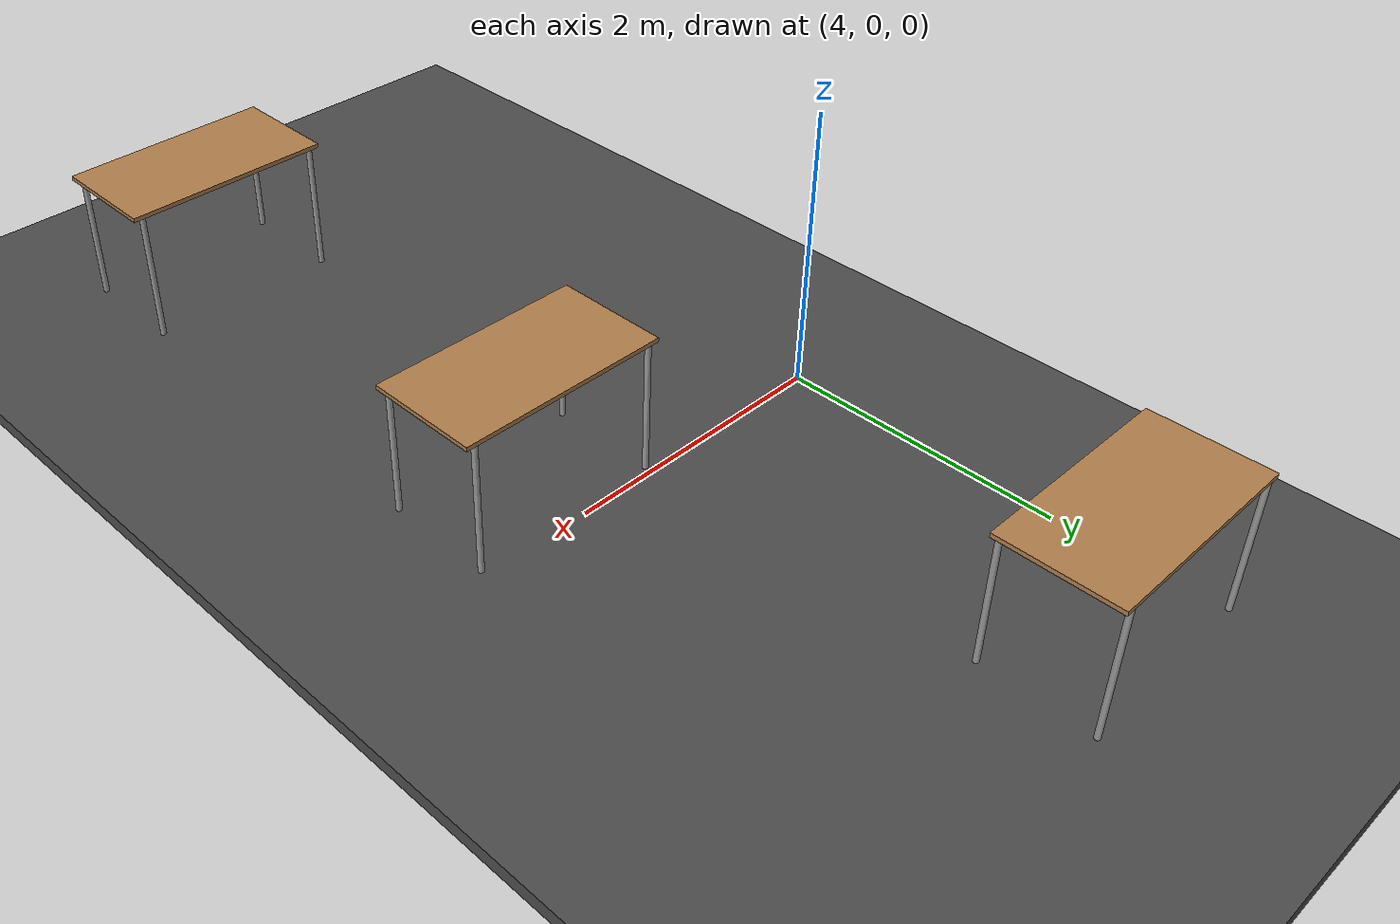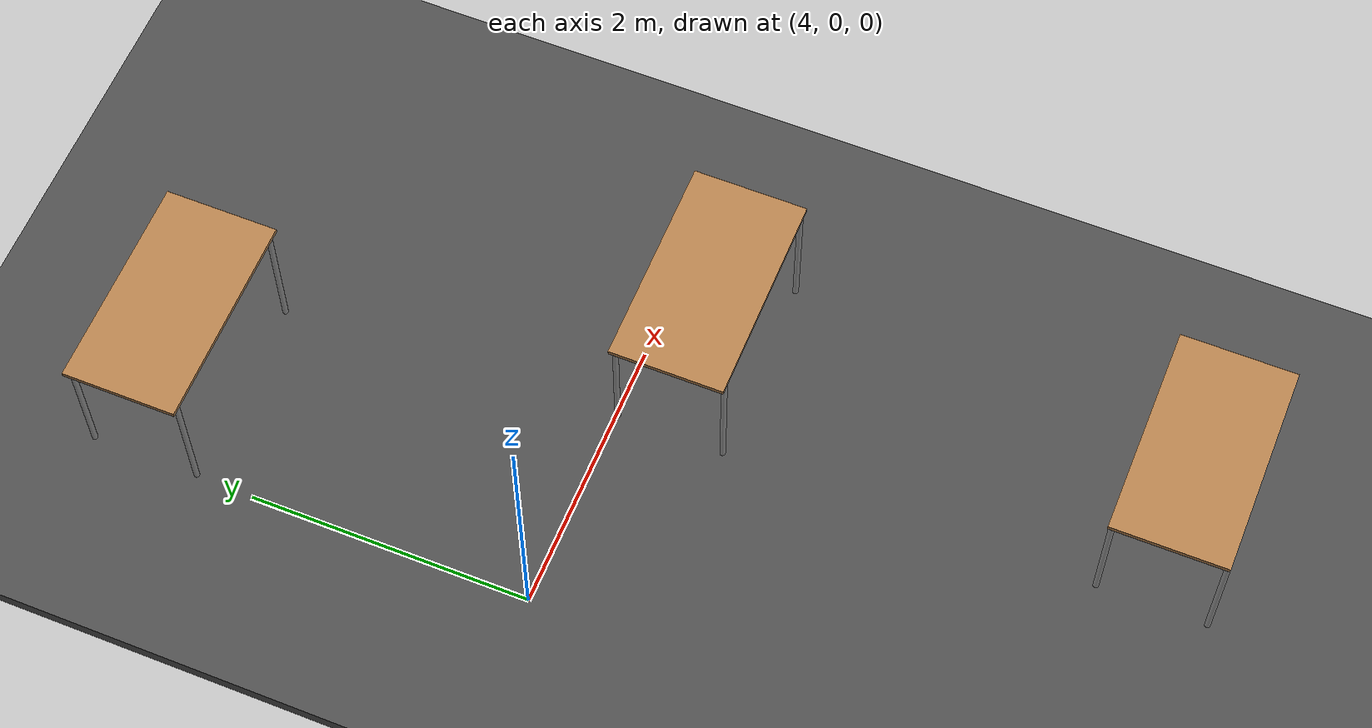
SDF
<sdf version="1.7">
 <world name="default">
  <model name="ground_plane">
   <static>1</static>
   <link name="link">
    <collision name="collision">
     <geometry><plane><normal>0 0 1</normal><size>100 100</size></plane></geometry>
     <surface>
      <contact><collide_bitmask>65535</collide_bitmask></contact>
      <friction><ode><mu>100</mu><mu2>50</mu2></ode></friction>
     </surface>
    </collision>
    <visual name="visual">
     <cast_shadows>0</cast_shadows>
     <geometry><plane><normal>0 0 1</normal><size>100 100</size></plane></geometry>
     <material>
      <script><uri>file://media/materials/scripts/gazebo.material</uri><name>Gazebo/Grey</name></script>
     </material>
    </visual>
   </link>
  </model>
  <model name="asphalt_plane">
   <static>1</static>
   <link name="link">
    <collision name="collision"><geometry><box><size>20 20 0.1</size></box></geometry></collision>
    <visual name="visual">
     <cast_shadows>0</cast_shadows>
     <geometry><box><size>20 20 0.1</size></box></geometry>
     <material>
      <script>
       <uri>model://asphalt_plane/materials/scripts</uri>
       <uri>model://asphalt_plane/materials/textures</uri>
       <name>vrc/asphalt</name>
      </script>
     </material>
    </visual>
   </link>
   <pose>0.032164 -0.016772 0 0 -0 0</pose>
  </model>
  <model name="table_0">
   <static>1</static>
   <link name="link">
    <collision name="surface">
     <pose>0 0 1 0 -0 0</pose>
     <geometry><box><size>1.5 0.8 0.03</size></box></geometry>
     <surface><friction><ode><mu>0.6</mu><mu2>0.6</mu2></ode></friction></surface>
    </collision>
    <visual name="visual1">
     <pose>0 0 1 0 -0 0</pose>
     <geometry><box><size>1.5 0.8 0.03</size></box></geometry>
     <material>
      <script><uri>file://media/materials/scripts/gazebo.material</uri><name>Gazebo/Wood</name></script>
     </material>
    </visual>
    <collision name="front_left_leg">
     <pose>0.68 0.38 0.5 0 -0 0</pose>
     <geometry><cylinder><radius>0.02</radius><length>1</length></cylinder></geometry>
    </collision>
    <visual name="front_left_leg">
     <pose>0.68 0.38 0.5 0 -0 0</pose>
     <geometry><cylinder><radius>0.02</radius><length>1</length></cylinder></geometry>
     <material>
      <script><uri>file://media/materials/scripts/gazebo.material</uri><name>Gazebo/Grey</name></script>
     </material>
    </visual>
    <collision name="front_right_leg">
     <pose>0.68 -0.38 0.5 0 -0 0</pose>
     <geometry><cylinder><radius>0.02</radius><length>1</length></cylinder></geometry>
    </collision>
    <visual name="front_right_leg">
     <pose>0.68 -0.38 0.5 0 -0 0</pose>
     <geometry><cylinder><radius>0.02</radius><length>1</length></cylinder></geometry>
     <material>
      <script><uri>file://media/materials/scripts/gazebo.material</uri><name>Gazebo/Grey</name></script>
     </material>
    </visual>
    <collision name="back_right_leg">
     <pose>-0.68 -0.38 0.5 0 -0 0</pose>
     <geometry><cylinder><radius>0.02</radius><length>1</length></cylinder></geometry>
    </collision>
    <visual name="back_right_leg">
     <pose>-0.68 -0.38 0.5 0 -0 0</pose>
     <geometry><cylinder><radius>0.02</radius><length>1</length></cylinder></geometry>
     <material>
      <script><uri>file://media/materials/scripts/gazebo.material</uri><name>Gazebo/Grey</name></script>
     </material>
    </visual>
    <collision name="back_left_leg">
     <pose>-0.68 0.38 0.5 0 -0 0</pose>
     <geometry><cylinder><radius>0.02</radius><length>1</length></cylinder></geometry>
    </collision>
    <visual name="back_left_leg">
     <pose>-0.68 0.38 0.5 0 -0 0</pose>
     <geometry><cylinder><radius>0.02</radius><length>1</length></cylinder></geometry>
     <material>
      <script><uri>file://media/materials/scripts/gazebo.material</uri><name>Gazebo/Grey</name></script>
     </material>
    </visual>
   </link>
   <pose>6.15369 -3.77587 0 0 -0 0</pose>
  </model>
  <model name="table_1">
   <static>1</static>
   <link name="link">
    <collision name="surface">
     <pose>0 0 1 0 -0 0</pose>
     <geometry><box><size>1.5 0.8 0.03</size></box></geometry>
     <surface><friction><ode><mu>0.6</mu><mu2>0.6</mu2></ode></friction></surface>
    </collision>
    <visual name="visual1">
     <pose>0 0 1 0 -0 0</pose>
     <geometry><box><size>1.5 0.8 0.03</size></box></geometry>
     <material>
      <script><uri>file://media/materials/scripts/gazebo.material</uri><name>Gazebo/Wood</name></script>
     </material>
    </visual>
    <collision name="front_left_leg">
     <pose>0.68 0.38 0.5 0 -0 0</pose>
     <geometry><cylinder><radius>0.02</radius><length>1</length></cylinder></geometry>
    </collision>
    <visual name="front_left_leg">
     <pose>0.68 0.38 0.5 0 -0 0</pose>
     <geometry><cylinder><radius>0.02</radius><length>1</length></cylinder></geometry>
     <material>
      <script><uri>file://media/materials/scripts/gazebo.material</uri><name>Gazebo/Grey</name></script>
     </material>
    </visual>
    <collision name="front_right_leg">
     <pose>0.68 -0.38 0.5 0 -0 0</pose>
     <geometry><cylinder><radius>0.02</radius><length>1</length></cylinder></geometry>
    </collision>
    <visual name="front_right_leg">
     <pose>0.68 -0.38 0.5 0 -0 0</pose>
     <geometry><cylinder><radius>0.02</radius><length>1</length></cylinder></geometry>
     <material>
      <script><uri>file://media/materials/scripts/gazebo.material</uri><name>Gazebo/Grey</name></script>
     </material>
    </visual>
    <collision name="back_right_leg">
     <pose>-0.68 -0.38 0.5 0 -0 0</pose>
     <geometry><cylinder><radius>0.02</radius><length>1</length></cylinder></geometry>
    </collision>
    <visual name="back_right_leg">
     <pose>-0.68 -0.38 0.5 0 -0 0</pose>
     <geometry><cylinder><radius>0.02</radius><length>1</length></cylinder></geometry>
     <material>
      <script><uri>file://media/materials/scripts/gazebo.material</uri><name>Gazebo/Grey</name></script>
     </material>
    </visual>
    <collision name="back_left_leg">
     <pose>-0.68 0.38 0.5 0 -0 0</pose>
     <geometry><cylinder><radius>0.02</radius><length>1</length></cylinder></geometry>
    </collision>
    <visual name="back_left_leg">
     <pose>-0.68 0.38 0.5 0 -0 0</pose>
     <geometry><cylinder><radius>0.02</radius><length>1</length></cylinder></geometry>
     <material>
      <script><uri>file://media/materials/scripts/gazebo.material</uri><name>Gazebo/Grey</name></script>
     </material>
    </visual>
   </link>
   <pose>6.14482 -0.397258 0 0 -0 0</pose>
  </model>
  <model name="table_17">
   <static>1</static>
   <link name="link">
    <collision name="surface">
     <pose>0 0 1 0 -0 0</pose>
     <geometry><box><size>1.5 0.8 0.03</size></box></geometry>
     <surface><friction><ode><mu>0.6</mu><mu2>0.6</mu2></ode></friction></surface>
    </collision>
    <visual name="visual1">
     <pose>0 0 1 0 -0 0</pose>
     <geometry><box><size>1.5 0.8 0.03</size></box></geometry>
     <material>
      <script><uri>file://media/materials/scripts/gazebo.material</uri><name>Gazebo/Wood</name></script>
     </material>
    </visual>
    <collision name="front_left_leg">
     <pose>0.68 0.38 0.5 0 -0 0</pose>
     <geometry><cylinder><radius>0.02</radius><length>1</length></cylinder></geometry>
    </collision>
    <visual name="front_left_leg">
     <pose>0.68 0.38 0.5 0 -0 0</pose>
     <geometry><cylinder><radius>0.02</radius><length>1</length></cylinder></geometry>
     <material>
      <script><uri>file://media/materials/scripts/gazebo.material</uri><name>Gazebo/Grey</name></script>
     </material>
    </visual>
    <collision name="front_right_leg">
     <pose>0.68 -0.38 0.5 0 -0 0</pose>
     <geometry><cylinder><radius>0.02</radius><length>1</length></cylinder></geometry>
    </collision>
    <visual name="front_right_leg">
     <pose>0.68 -0.38 0.5 0 -0 0</pose>
     <geometry><cylinder><radius>0.02</radius><length>1</length></cylinder></geometry>
     <material>
      <script><uri>file://media/materials/scripts/gazebo.material</uri><name>Gazebo/Grey</name></script>
     </material>
    </visual>
    <collision name="back_right_leg">
     <pose>-0.68 -0.38 0.5 0 -0 0</pose>
     <geometry><cylinder><radius>0.02</radius><length>1</length></cylinder></geometry>
    </collision>
    <visual name="back_right_leg">
     <pose>-0.68 -0.38 0.5 0 -0 0</pose>
     <geometry><cylinder><radius>0.02</radius><length>1</length></cylinder></geometry>
     <material>
      <script><uri>file://media/materials/scripts/gazebo.material</uri><name>Gazebo/Grey</name></script>
     </material>
    </visual>
    <collision name="back_left_leg">
     <pose>-0.68 0.38 0.5 0 -0 0</pose>
     <geometry><cylinder><radius>0.02</radius><length>1</length></cylinder></geometry>
    </collision>
    <visual name="back_left_leg">
     <pose>-0.68 0.38 0.5 0 -0 0</pose>
     <geometry><cylinder><radius>0.02</radius><length>1</length></cylinder></geometry>
     <material>
      <script><uri>file://media/materials/scripts/gazebo.material</uri><name>Gazebo/Grey</name></script>
     </material>
    </visual>
   </link>
   <pose>4.67752 2.78709 0 0 -0 0</pose>
  </model>
 </world>
</sdf>
